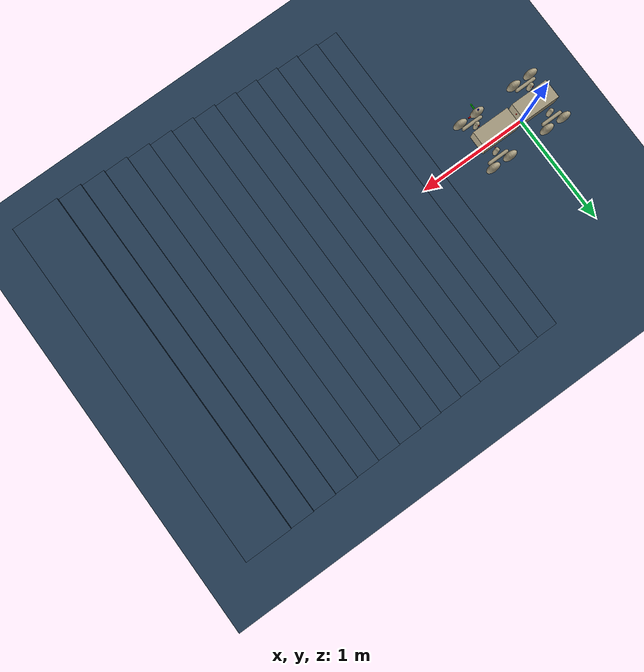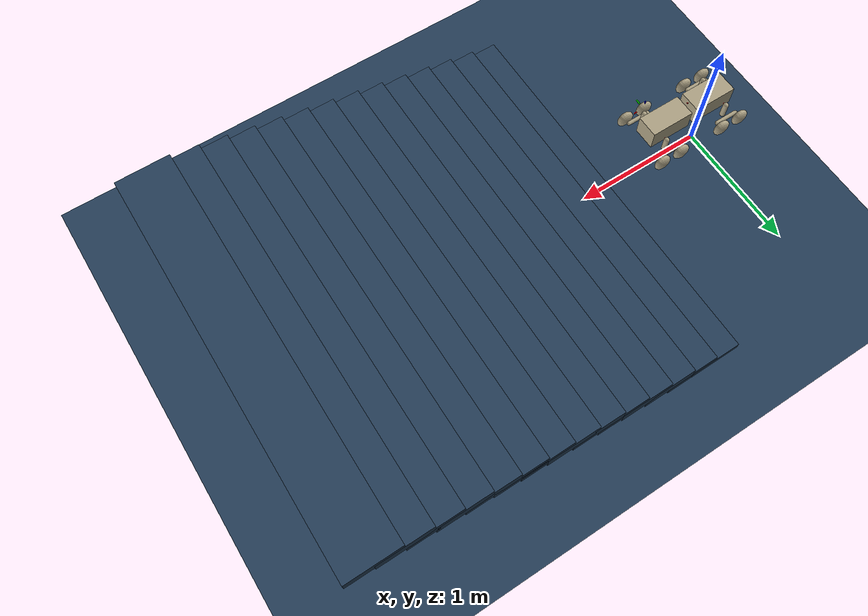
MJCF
<mujoco model="walter_sr scene">
  <include file="WaLTER_Senior_updated.xml"/>

  <statistic center="0 0 0.1" extent="0.8"/>

  <visual>
    <headlight diffuse="0.6 0.6 0.6" ambient="0.3 0.3 0.3" specular="0 0 0"/>
    <rgba haze="0.15 0.25 0.35 1"/>
    <global azimuth="120" elevation="-20"/>
  </visual>

  <asset>
    <texture type="skybox" builtin="gradient" rgb1="0.3 0.5 0.7" rgb2="0 0 0" width="512" height="3072"/>
    <texture type="2d" name="groundplane" builtin="checker" mark="edge" rgb1="0.2 0.3 0.4" rgb2="0.1 0.2 0.3"
      markrgb="0.8 0.8 0.8" width="300" height="300"/>
    <material name="groundplane" texture="groundplane" texuniform="true" texrepeat="5 5" reflectance="0.2"/>
    <material name="wood" rgba="0.7 0.5 0.3 1"/>
  </asset>

  <worldbody>
    <light pos="0 0 1.5" dir="0 0 -1" directional="true"/>
    <camera name="default" pos="0.846 -1.465 0.916" xyaxes="0.866 0.500 0.000 -0.171 0.296 0.940"/>
    <geom name="floor" size="0 0 0.05" type="plane" material="groundplane"/>
    <!-- stairs -->
    <!-- stairs -->
    <body name="step_0" pos="1.0 0 0.0">
      <geom type="box" size="0.2 1.5 0.05" material="groundplane"/>
      <geom type="box" size="0.2 1.5 0.05" conaffinity="1" condim="3"/>
    </body>

    <body name="step_1" pos="1.2 0 0.05">
      <geom type="box" size="0.2 1.5 0.05" material="groundplane"/>
      <geom type="box" size="0.2 1.5 0.05" conaffinity="1" condim="3"/>
    </body>

    <body name="step_2" pos="1.4 0 0.10">
      <geom type="box" size="0.2 1.5 0.05" material="groundplane"/>
      <geom type="box" size="0.2 1.5 0.05" conaffinity="1" condim="3"/>
    </body>

    <body name="step_3" pos="1.6 0 0.15">
      <geom type="box" size="0.2 1.5 0.05" material="groundplane"/>
      <geom type="box" size="0.2 1.5 0.05" conaffinity="1" condim="3"/>
    </body>

    <body name="step_4" pos="1.8 0 0.20">
      <geom type="box" size="0.2 1.5 0.05" material="groundplane"/>
      <geom type="box" size="0.2 1.5 0.05" conaffinity="1" condim="3"/>
    </body>

    <body name="step_5" pos="2.0 0 0.25">
      <geom type="box" size="0.2 1.5 0.05" material="groundplane"/>
      <geom type="box" size="0.2 1.5 0.05" conaffinity="1" condim="3"/>
    </body>

    <body name="step_6" pos="2.2 0 0.30">
      <geom type="box" size="0.2 1.5 0.05" material="groundplane"/>
      <geom type="box" size="0.2 1.5 0.05" conaffinity="1" condim="3"/>
    </body>

    <body name="step_7" pos="2.4 0 0.35">
      <geom type="box" size="0.2 1.5 0.05" material="groundplane"/>
      <geom type="box" size="0.2 1.5 0.05" conaffinity="1" condim="3"/>
    </body>

    <body name="step_8" pos="2.6 0 0.40">
      <geom type="box" size="0.2 1.5 0.05" material="groundplane"/>
      <geom type="box" size="0.2 1.5 0.05" conaffinity="1" condim="3"/>
    </body>

    <body name="step_9" pos="2.8 0 0.45">
      <geom type="box" size="0.2 1.5 0.05" material="groundplane"/>
      <geom type="box" size="0.2 1.5 0.05" conaffinity="1" condim="3"/>
    </body>

    <body name="step_10" pos="3.0 0 0.50">
      <geom type="box" size="0.2 1.5 0.05" material="groundplane"/>
      <geom type="box" size="0.2 1.5 0.05" conaffinity="1" condim="3"/>
    </body>

    <body name="step_11" pos="3.2 0 0.55">
      <geom type="box" size="0.2 1.5 0.05" material="groundplane"/>
      <geom type="box" size="0.2 1.5 0.05" conaffinity="1" condim="3"/>
    </body>

    <body name="step_12" pos="3.4 0 0.60">
      <geom type="box" size="0.2 1.5 0.05" material="groundplane"/>
      <geom type="box" size="0.2 1.5 0.05" conaffinity="1" condim="3"/>
    </body>

    <body name="step_13" pos="3.6 0 0.65">
      <geom type="box" size="0.2 1.5 0.05" material="groundplane"/>
      <geom type="box" size="0.2 1.5 0.05" conaffinity="1" condim="3"/>
    </body>

  </worldbody>

</mujoco>

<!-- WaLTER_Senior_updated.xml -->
<mujoco model="MuJoCo Model">
  <compiler angle="radian" autolimits="false"/>

  <worldbody>
    <body name="torso" pos="0 0 0.5">
      <site name="torso_site" pos="0.188 0 0.08" type="sphere" rgba="1 0 0 1"/>
      <joint name="torso_joint" type="free" limited="false" actuatorfrclimited="false"/>
      <geom size="0.165 0.08255 0.0762" type="box" mass="11.564" rgba="0.694118 0.65098 0.533333 1"/>

      <body name="torso_left_thigh" pos="-0.0761 0.10795 0">
        <joint name="torso_left_thigh_joint" pos="0 0 0" axis="0 1 0" armature="0.0072" damping="0.5"/>
        <geom name="torso_left_thigh_geom" size="0.02 0.0508" pos="0 0.02 -0.0508" type="capsule" mass="0.5" rgba="0.694118 0.65098 0.533333 1"/>
        <site name="tl_thigh_site" pos="0 0 0" rgba="1 0 0 1"/>

        <body name="torso_left_shin" pos="0 0.06135 -0.1016">
          <joint name="torso_left_thigh_shin_joint" pos="0 0 0" axis="0 1 0" armature="0.01805" damping="0.5"/>
          <geom name="torso_left_shin_geom" size="0.015 0.08255" quat="0.707107 0 0.707107 0" type="capsule" mass="0.5" rgba="0.694118 0.65098 0.533333 1"/>
          <site name="tl_shin_site" pos="0 0 0" rgba="1 0 0 1"/>

          <body name="torso_left_front_wheel" pos="0.08255 0.04675 0">
            <geom name="torso_left_front_wheel_geom" size="0.0635 0.0635 0.03175" quat="0.707107 0.707107 0 0" type="ellipsoid" solref="0.2 0.5" mass="0.5" rgba="0.694118 0.65098 0.533333 1"/>
            <site name="tlf_wheel_site" pos="0 0 0" size="0.0635 0.0635 0.03175" quat="0.707107 0.707107 0 0" type="ellipsoid" rgba="1 0 0 1"/>
          </body>

          <body name="torso_left_rear_wheel" pos="-0.08255 0.04675 0">
            <geom name="torso_left_rear_wheel_geom" size="0.0635 0.0635 0.03175" quat="0.707107 0.707107 0 0" type="ellipsoid" solref="0.2 0.5" mass="0.5" rgba="0.694118 0.65098 0.533333 1"/>
            <site name="tlr_wheel_site" pos="0 0 0" size="0.0635 0.0635 0.03175" quat="0.707107 0.707107 0 0" type="ellipsoid" rgba="1 0 0 1"/>
          </body>
        </body>
      </body>

      <body name="torso_right_thigh" pos="-0.0761 -0.10795 0">
        <joint name="torso_right_thigh_joint" pos="0 0 0" axis="0 1 0" armature="0.0072" damping="0.5"/>
        <geom name="torso_right_thigh_geom" size="0.02 0.0508" pos="0 -0.02 -0.0508" type="capsule" mass="0.5" rgba="0.694118 0.65098 0.533333 1"/>
        <site name="tr_thigh_site" pos="0 0 0" rgba="1 0 0 1"/>

        <body name="torso_right_shin" pos="0 -0.06135 -0.1016">
          <joint name="torso_right_thigh_shin_joint" pos="0 0 0" axis="0 1 0" armature="0.01805" damping="0.5"/>
          <geom name="torso_right_shin_geom" size="0.015 0.08255" quat="0.707107 0 0.707107 0" type="capsule" mass="0.5" rgba="0.694118 0.65098 0.533333 1"/>
          <site name="tr_shin_site" pos="0 0 0" rgba="1 0 0 1"/>

          <body name="torso_right_front_wheel" pos="0.08255 -0.04675 0">
            <geom name="torso_right_front_wheel_geom" size="0.0635 0.0635 0.03175" quat="0.707107 0.707107 0 0" type="ellipsoid" solref="0.2 0.5" mass="0.5" rgba="0.694118 0.65098 0.533333 1"/>
            <site name="trf_wheel_site" pos="0 0 0" size="0.0635 0.0635 0.03175" quat="0.707107 0.707107 0 0" type="ellipsoid" rgba="1 0 0 1"/>
          </body>

          <body name="torso_right_rear_wheel" pos="-0.08255 -0.04675 0">
            <geom name="torso_right_rear_wheel_geom" size="0.0635 0.0635 0.03175" quat="0.707107 0.707107 0 0" type="ellipsoid" solref="0.2 0.5" mass="0.5" rgba="0.694118 0.65098 0.533333 1"/>
            <site name="trr_wheel_site" pos="0 0 0" size="0.0635 0.0635 0.03175" quat="0.707107 0.707107 0 0" type="ellipsoid" rgba="1 0 0 1"/>
          </body>
        </body>
      </body>

      <body name="head" pos="0.376 0 0">
        <geom size="0.165 0.08255 0.0762" type="box" mass="11.564" rgba="0.694118 0.65098 0.533333 1"/>

        <body name="head_left_thigh" pos="0.0761 0.10795 0">
          <joint name="head_left_thigh_joint" pos="0 0 0" axis="0 1 0" armature="0.0072" damping="0.5"/>
          <geom name="head_left_thigh_geom" size="0.02 0.0508" pos="0 0.02 -0.0508" type="capsule" mass="0.5" rgba="0.694118 0.65098 0.533333 1"/>
          <site name="hl_thigh_site" pos="0 0 0" rgba="1 0 0 1"/>

          <body name="head_left_shin" pos="0 0.06135 -0.1016">
            <joint name="head_left_thigh_shin_joint" pos="0 0 0" axis="0 1 0" armature="0.01805" damping="0.5"/>
            <geom name="head_left_shin_geom" size="0.015 0.08255" quat="0.707107 0 0.707107 0" type="capsule" mass="0.5" rgba="0.694118 0.65098 0.533333 1"/>
            <site name="hl_shin_site" pos="0 0 0" rgba="1 0 0 1"/>

            <body name="head_left_front_wheel" pos="0.08255 0.04675 0">
              <geom name="head_left_front_wheel_geom" size="0.0635 0.0635 0.03175" quat="0.707107 0.707107 0 0" type="ellipsoid" solref="0.2 0.5" mass="0.5" rgba="0.694118 0.65098 0.533333 1"/>
              <site name="hlf_wheel_site" pos="0 0 0" size="0.0635 0.0635 0.03175" quat="0.707107 0.707107 0 0" type="ellipsoid" rgba="1 0 0 1"/>
            </body>

            <body name="head_left_rear_wheel" pos="-0.08255 0.04675 0">
              <geom name="head_left_rear_wheel_geom" size="0.0635 0.0635 0.03175" quat="0.707107 0.707107 0 0" type="ellipsoid" solref="0.2 0.5" mass="0.5" rgba="0.694118 0.65098 0.533333 1"/>
              <site name="hlr_wheel_site" pos="0 0 0" size="0.0635 0.0635 0.03175" quat="0.707107 0.707107 0 0" type="ellipsoid" rgba="1 0 0 1"/>
              </body>
          </body>
        </body>

        <body name="head_right_thigh" pos="0.0761 -0.10795 0">
          <joint name="head_right_thigh_joint" pos="0 0 0" axis="0 1 0" armature="0.0072" damping="0.5"/>
          <geom name="head_right_thigh_geom" size="0.02 0.0508" pos="0 -0.02 -0.0508" type="capsule" mass="0.5" rgba="0.694118 0.65098 0.533333 1"/>
          <site name="hr_thigh_site" pos="0 0 0" rgba="1 0 0 1"/>

          <body name="head_right_shin" pos="0 -0.06135 -0.1016">
            <joint name="head_right_thigh_shin_joint" pos="0 0 0" axis="0 1 0" armature="0.01805" damping="0.5"/>
            <geom name="head_right_shin_geom" size="0.015 0.08255" quat="0.707107 0 0.707107 0" type="capsule" mass="0.5" rgba="0.694118 0.65098 0.533333 1"/>
            <site name="hr_shin_site" pos="0 0 0" rgba="1 0 0 1"/>

            <body name="head_right_front_wheel" pos="0.08255 -0.04675 0">
              <geom name="head_right_front_wheel_geom" size="0.0635 0.0635 0.03175" quat="0.707107 0.707107 0 0" type="ellipsoid" solref="0.2 0.5" mass="0.5" rgba="0.694118 0.65098 0.533333 1"/>
              <site name="hrf_wheel_site" pos="0 0 0" size="0.0635 0.0635 0.03175" quat="0.707107 0.707107 0 0" type="ellipsoid" rgba="1 0 0 1"/>
            </body>

            <body name="head_right_rear_wheel" pos="-0.08255 -0.04675 0">
              <geom name="head_right_rear_wheel_geom" size="0.0635 0.0635 0.03175" quat="0.707107 0.707107 0 0" type="ellipsoid" solref="0.2 0.5" mass="0.5" rgba="0.694118 0.65098 0.533333 1"/>
              <site name="hrr_wheel_site" pos="0 0 0" size="0.0635 0.0635 0.03175" quat="0.707107 0.707107 0 0" type="ellipsoid" rgba="1 0 0 1"/>
              <site name="hrr_xaxis" type="capsule" size="0.005 0.04" pos="0.04 0 0" quat="0.707107 0 0.707107 0" rgba="1 0 0 1"/>
              <site name="hrr_yaxis" type="capsule" size="0.005 0.04" pos="0 -0.04 0" quat="0.707107 -0.707107 0 0" rgba="0 1 0 1"/>
              <site name="hrr_zaxis" type="capsule" size="0.005 0.04" pos="0 0 0.04" quat="1 0 0 0" rgba="0 0 1 1"/>
            </body>
          </body>
        </body>
      </body>
    </body>
  </worldbody>

  <actuator>
    <general name="bl_hip" joint="torso_left_thigh_joint"/>
    <general name="bl_knee" joint="torso_left_thigh_shin_joint"/>
    <general name="br_hip" joint="torso_right_thigh_joint"/>
    <general name="br_knee" joint="torso_right_thigh_shin_joint"/>
    <general name="fl_hip" joint="head_left_thigh_joint"/>
    <general name="fl_knee" joint="head_left_thigh_shin_joint"/>
    <general name="fr_hip" joint="head_right_thigh_joint"/>
    <general name="fr_knee" joint="head_right_thigh_shin_joint"/>
  </actuator>

  <sensor>
    <force  name="hrf_wheel_force_sensor"  site="hlr_wheel_site"/>
    <torque name="hrf_wheel_torque_sensor" site="hlr_wheel_site"/>
    <accelerometer name="body_accel" site="torso_site"/>
    <gyro name="body_gyro" site="torso_site"/>
  </sensor>

    <!-- key frame has 0,0 for wheel sites because the bodies have the positions fixed/initialized (k0 - z -) -->
    <keyframe>
      <key name="home"
        qpos="0 0 0.1675 1 0 0 0
              0 0
              0 0
              0 0
              0 0"
        ctrl="0 0
              0 0
              0 0
              0 0"/>
      <key name="flat"
        qpos='0 0 0.05 1 0 0 0 1.71253 -1.71287 1.71253 -1.71287 -1.71253 1.71287 -1.71253 1.71287'
        ctrl="0 0
              0 0
              0 0
              0 0"/>
      <key name="flat_up"
        qpos='0.0898423 -0.0025112 0.05 1 0 0 0 3.14 3.14 3.14 3.14 3.14 3.14 3.14 3.14'
        ctrl="0 0
              0 0
              0 0
              0 0"/>
      <key name="fortumbling"
        qpos="0 0 0.13 1 0 0 0
              1.5708 0
              1.5708 0
              -1.5708 0
              -1.5708 0"
        ctrl="0 0
              0 0
              0 0
              0 0"/>
      <key name="fortumbling2"
        qpos="0 0 0.13 1 0 0 0
              0.659736 -0.659736
              0.659736 -0.659736
              -0.659736 0.659736
              -0.659736 0.659736"
        ctrl="0 0
              0 0
              0 0
              0 0"/>
      <key name="shinup30deg"
        qpos="0 0 0.19 1 0 0 0
              0.534 0
              0.534 0
              -0.534 0
              -0.534 0"
        ctrl="0 0
              0 0
              0 0
              0 0"/>
      <key name="fortumbling3"
        qpos="0 0 0.13 1 0 0 0
              0.659736 -0.659736
              0.659736 -0.659736
              0.659736 -0.659736
              0.659736 -0.659736"
        ctrl="0 0
              0 0
              0 0
              0 0"/>
    </keyframe>
        <!-- qpos='0.0898423 -0.0025112 0.05 1 0 0 0 3.62333 -5.46591 3.62333 -5.46591 3.62333 -5.46591 3.62333 -5.46591 ' -->
</mujoco>
